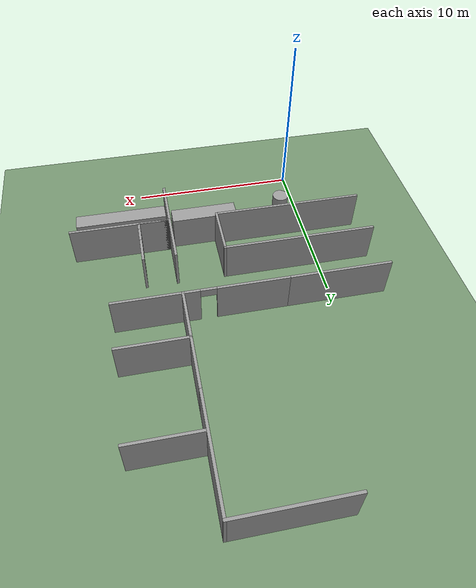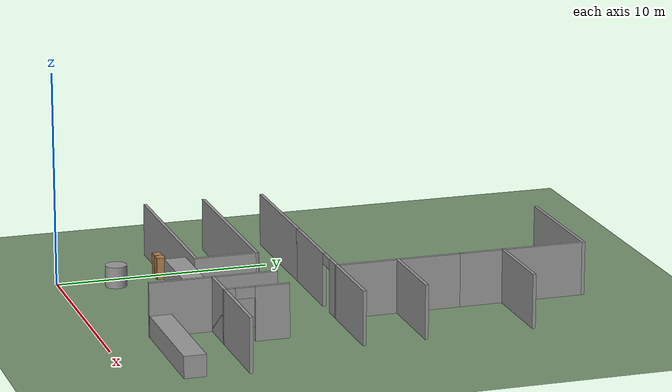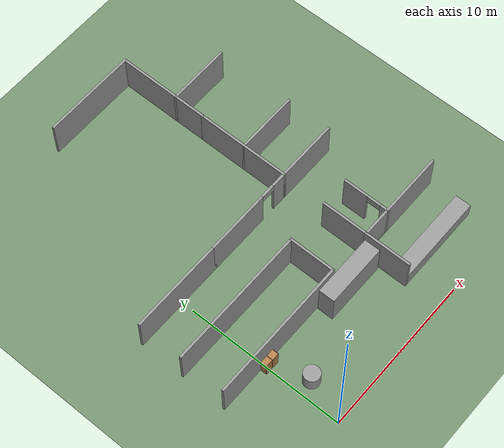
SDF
<sdf version="1.7">
 <world name="default">
  <model name="ground_plane">
   <static>1</static>
   <link name="link">
    <collision name="collision">
     <geometry><plane><normal>0 0 1</normal><size>600 600</size></plane></geometry>
     <surface>
      <contact><collide_bitmask>65535</collide_bitmask></contact>
      <friction><ode><mu>100</mu><mu2>50</mu2></ode></friction>
     </surface>
    </collision>
    <visual name="visual">
     <cast_shadows>0</cast_shadows>
     <geometry><plane><normal>0 0 1</normal><size>100 100</size></plane></geometry>
     <material><ambient>0.45 0.57 0.43 1</ambient><diffuse>0.45 0.57 0.43 1</diffuse></material>
    </visual>
   </link>
  </model>
  <model name="unit_box_clone">
   <pose>6.38296 4.44486 1.08892 0 -0.000118 0.002103</pose>
   <link name="link">
    <inertial>
     <mass>1</mass>
     <inertia>
      <ixx>0.166667</ixx>
      <ixy>0</ixy>
      <ixz>0</ixz>
      <iyy>0.166667</iyy>
      <iyz>0</iyz>
      <izz>0.166667</izz>
     </inertia>
    </inertial>
    <collision name="collision"><geometry><box><size>3.92499 1 2.1783</size></box></geometry></collision>
    <visual name="visual">
     <geometry><box><size>3.92499 1 2.1783</size></box></geometry>
     <material>
      <script><name>Gazebo/Grey</name><uri>file://media/materials/scripts/gazebo.material</uri></script>
     </material>
    </visual>
   </link>
  </model>
  <model name="myhal_V3_2">
   <link name="Wall_335">
    <pose>5.85 20.325 0 0 -0 3.14159</pose>
    <visual name="Wall_335_Visual">
     <pose>0 0 1.25 0 -0 0</pose>
     <geometry><box><size>6 0.15 2.5</size></box></geometry>
     <material>
      <script><uri>file://media/materials/scripts/gazebo.material</uri><name>Gazebo/Grey</name></script>
      <ambient>1 1 1 1</ambient>
      <shader type="pixel"/>
     </material>
     <meta><layer>0</layer></meta>
    </visual>
    <collision name="Wall_335_Collision">
     <pose>0 0 1.25 0 -0 0</pose>
     <geometry><box><size>6 0.15 2.5</size></box></geometry>
     <surface>
      <friction>
       <ode><mu>1</mu><mu2>1</mu2><fdir1>0 0 0</fdir1><slip1>0</slip1><slip2>0</slip2></ode>
       <torsional>
        <coefficient>1</coefficient>
        <patch_radius>0</patch_radius>
        <surface_radius>0</surface_radius>
        <use_patch_radius>1</use_patch_radius>
        <ode><slip>0</slip></ode>
       </torsional>
      </friction>
      <bounce><restitution_coefficient>0</restitution_coefficient><threshold>1e+06</threshold></bounce>
      <contact>
       <collide_without_contact>0</collide_without_contact>
       <collide_without_contact_bitmask>1</collide_without_contact_bitmask>
       <collide_bitmask>1</collide_bitmask>
       <ode>
        <soft_cfm>0</soft_cfm>
        <soft_erp>0.2</soft_erp>
        <kp>1e+13</kp>
        <kd>1</kd>
        <max_vel>0.01</max_vel>
        <min_depth>0</min_depth>
       </ode>
       <bullet>
        <split_impulse>1</split_impulse>
        <split_impulse_penetration_threshold>-0.01</split_impulse_penetration_threshold>
        <soft_cfm>0</soft_cfm>
        <soft_erp>0.2</soft_erp>
        <kp>1e+13</kp>
        <kd>1</kd>
       </bullet>
      </contact>
     </surface>
    </collision>
   </link>
   <link name="Wall_371">
    <pose>0 8.625 0 0 -0 0</pose>
    <visual name="Wall_371_Visual">
     <pose>0 0 1.25 0 -0 0</pose>
     <geometry><box><size>6 0.15 2.5</size></box></geometry>
     <material>
      <script><uri>file://media/materials/scripts/gazebo.material</uri><name>Gazebo/Grey</name></script>
      <ambient>1 1 1 1</ambient>
      <shader type="pixel"/>
     </material>
     <meta><layer>0</layer></meta>
    </visual>
    <collision name="Wall_371_Collision">
     <pose>0 0 1.25 0 -0 0</pose>
     <geometry><box><size>6 0.15 2.5</size></box></geometry>
     <surface>
      <friction>
       <ode><mu>1</mu><mu2>1</mu2><fdir1>0 0 0</fdir1><slip1>0</slip1><slip2>0</slip2></ode>
       <torsional>
        <coefficient>1</coefficient>
        <patch_radius>0</patch_radius>
        <surface_radius>0</surface_radius>
        <use_patch_radius>1</use_patch_radius>
        <ode><slip>0</slip></ode>
       </torsional>
      </friction>
      <bounce><restitution_coefficient>0</restitution_coefficient><threshold>1e+06</threshold></bounce>
      <contact>
       <collide_without_contact>0</collide_without_contact>
       <collide_without_contact_bitmask>1</collide_without_contact_bitmask>
       <collide_bitmask>1</collide_bitmask>
       <ode>
        <soft_cfm>0</soft_cfm>
        <soft_erp>0.2</soft_erp>
        <kp>1e+13</kp>
        <kd>1</kd>
        <max_vel>0.01</max_vel>
        <min_depth>0</min_depth>
       </ode>
       <bullet>
        <split_impulse>1</split_impulse>
        <split_impulse_penetration_threshold>-0.01</split_impulse_penetration_threshold>
        <soft_cfm>0</soft_cfm>
        <soft_erp>0.2</soft_erp>
        <kp>1e+13</kp>
        <kd>1</kd>
       </bullet>
      </contact>
     </surface>
    </collision>
   </link>
   <link name="Wall_372">
    <pose>5.85 8.625 0 0 -0 0</pose>
    <visual name="Wall_372_Visual_0">
     <pose>-0.95746 0 1.25 0 -0 0</pose>
     <geometry><box><size>4.08508 0.15 2.5</size></box></geometry>
     <material>
      <script><uri>file://media/materials/scripts/gazebo.material</uri><name>Gazebo/Grey</name></script>
      <ambient>1 1 1 1</ambient>
      <shader type="pixel"/>
     </material>
     <meta><layer>0</layer></meta>
    </visual>
    <visual name="Wall_372_Visual_1">
     <pose>2.49254 0 1.25 0 -0 0</pose>
     <geometry><box><size>1.01492 0.15 2.5</size></box></geometry>
     <material>
      <script><uri>file://media/materials/scripts/gazebo.material</uri><name>Gazebo/Grey</name></script>
      <ambient>1 1 1 1</ambient>
      <shader type="pixel"/>
     </material>
     <meta><layer>0</layer></meta>
    </visual>
    <visual name="Wall_372_Visual_2">
     <pose>1.53508 0 2.25 0 -0 0</pose>
     <geometry><box><size>0.9 0.15 0.5</size></box></geometry>
     <material>
      <script><uri>file://media/materials/scripts/gazebo.material</uri><name>Gazebo/Grey</name></script>
      <ambient>1 1 1 1</ambient>
      <shader type="pixel"/>
     </material>
     <meta><layer>0</layer></meta>
    </visual>
    <collision name="Wall_372_Collision_0">
     <pose>-0.95746 0 1.25 0 -0 0</pose>
     <geometry><box><size>4.08508 0.15 2.5</size></box></geometry>
     <surface>
      <friction>
       <ode><mu>1</mu><mu2>1</mu2><fdir1>0 0 0</fdir1><slip1>0</slip1><slip2>0</slip2></ode>
       <torsional>
        <coefficient>1</coefficient>
        <patch_radius>0</patch_radius>
        <surface_radius>0</surface_radius>
        <use_patch_radius>1</use_patch_radius>
        <ode><slip>0</slip></ode>
       </torsional>
      </friction>
      <bounce><restitution_coefficient>0</restitution_coefficient><threshold>1e+06</threshold></bounce>
      <contact>
       <collide_without_contact>0</collide_without_contact>
       <collide_without_contact_bitmask>1</collide_without_contact_bitmask>
       <collide_bitmask>1</collide_bitmask>
       <ode>
        <soft_cfm>0</soft_cfm>
        <soft_erp>0.2</soft_erp>
        <kp>1e+13</kp>
        <kd>1</kd>
        <max_vel>0.01</max_vel>
        <min_depth>0</min_depth>
       </ode>
       <bullet>
        <split_impulse>1</split_impulse>
        <split_impulse_penetration_threshold>-0.01</split_impulse_penetration_threshold>
        <soft_cfm>0</soft_cfm>
        <soft_erp>0.2</soft_erp>
        <kp>1e+13</kp>
        <kd>1</kd>
       </bullet>
      </contact>
     </surface>
    </collision>
    <collision name="Wall_372_Collision_1">
     <pose>2.49254 0 1.25 0 -0 0</pose>
     <geometry><box><size>1.01492 0.15 2.5</size></box></geometry>
     <surface>
      <friction>
       <ode><mu>1</mu><mu2>1</mu2><fdir1>0 0 0</fdir1><slip1>0</slip1><slip2>0</slip2></ode>
       <torsional>
        <coefficient>1</coefficient>
        <patch_radius>0</patch_radius>
        <surface_radius>0</surface_radius>
        <use_patch_radius>1</use_patch_radius>
        <ode><slip>0</slip></ode>
       </torsional>
      </friction>
      <bounce><restitution_coefficient>0</restitution_coefficient><threshold>1e+06</threshold></bounce>
      <contact>
       <collide_without_contact>0</collide_without_contact>
       <collide_without_contact_bitmask>1</collide_without_contact_bitmask>
       <collide_bitmask>1</collide_bitmask>
       <ode>
        <soft_cfm>0</soft_cfm>
        <soft_erp>0.2</soft_erp>
        <kp>1e+13</kp>
        <kd>1</kd>
        <max_vel>0.01</max_vel>
        <min_depth>0</min_depth>
       </ode>
       <bullet>
        <split_impulse>1</split_impulse>
        <split_impulse_penetration_threshold>-0.01</split_impulse_penetration_threshold>
        <soft_cfm>0</soft_cfm>
        <soft_erp>0.2</soft_erp>
        <kp>1e+13</kp>
        <kd>1</kd>
       </bullet>
      </contact>
     </surface>
    </collision>
    <collision name="Wall_372_Collision_2">
     <pose>1.53508 0 2.25 0 -0 0</pose>
     <geometry><box><size>0.9 0.15 0.5</size></box></geometry>
     <surface>
      <friction>
       <ode><mu>1</mu><mu2>1</mu2><fdir1>0 0 0</fdir1><slip1>0</slip1><slip2>0</slip2></ode>
       <torsional>
        <coefficient>1</coefficient>
        <patch_radius>0</patch_radius>
        <surface_radius>0</surface_radius>
        <use_patch_radius>1</use_patch_radius>
        <ode><slip>0</slip></ode>
       </torsional>
      </friction>
      <bounce><restitution_coefficient>0</restitution_coefficient><threshold>1e+06</threshold></bounce>
      <contact>
       <collide_without_contact>0</collide_without_contact>
       <collide_without_contact_bitmask>1</collide_without_contact_bitmask>
       <collide_bitmask>1</collide_bitmask>
       <ode>
        <soft_cfm>0</soft_cfm>
        <soft_erp>0.2</soft_erp>
        <kp>1e+13</kp>
        <kd>1</kd>
        <max_vel>0.01</max_vel>
        <min_depth>0</min_depth>
       </ode>
       <bullet>
        <split_impulse>1</split_impulse>
        <split_impulse_penetration_threshold>-0.01</split_impulse_penetration_threshold>
        <soft_cfm>0</soft_cfm>
        <soft_erp>0.2</soft_erp>
        <kp>1e+13</kp>
        <kd>1</kd>
       </bullet>
      </contact>
     </surface>
    </collision>
   </link>
   <link name="Wall_373">
    <pose>8.775 11.55 0 0 -0 1.5708</pose>
    <visual name="Wall_373_Visual">
     <pose>0 0 1.25 0 -0 0</pose>
     <geometry><box><size>6 0.15 2.5</size></box></geometry>
     <material>
      <script><uri>file://media/materials/scripts/gazebo.material</uri><name>Gazebo/Grey</name></script>
      <ambient>1 1 1 1</ambient>
      <shader type="pixel"/>
     </material>
     <meta><layer>0</layer></meta>
    </visual>
    <collision name="Wall_373_Collision">
     <pose>0 0 1.25 0 -0 0</pose>
     <geometry><box><size>6 0.15 2.5</size></box></geometry>
     <surface>
      <friction>
       <ode><mu>1</mu><mu2>1</mu2><fdir1>0 0 0</fdir1><slip1>0</slip1><slip2>0</slip2></ode>
       <torsional>
        <coefficient>1</coefficient>
        <patch_radius>0</patch_radius>
        <surface_radius>0</surface_radius>
        <use_patch_radius>1</use_patch_radius>
        <ode><slip>0</slip></ode>
       </torsional>
      </friction>
      <bounce><restitution_coefficient>0</restitution_coefficient><threshold>1e+06</threshold></bounce>
      <contact>
       <collide_without_contact>0</collide_without_contact>
       <collide_without_contact_bitmask>1</collide_without_contact_bitmask>
       <collide_bitmask>1</collide_bitmask>
       <ode>
        <soft_cfm>0</soft_cfm>
        <soft_erp>0.2</soft_erp>
        <kp>1e+13</kp>
        <kd>1</kd>
        <max_vel>0.01</max_vel>
        <min_depth>0</min_depth>
       </ode>
       <bullet>
        <split_impulse>1</split_impulse>
        <split_impulse_penetration_threshold>-0.01</split_impulse_penetration_threshold>
        <soft_cfm>0</soft_cfm>
        <soft_erp>0.2</soft_erp>
        <kp>1e+13</kp>
        <kd>1</kd>
       </bullet>
      </contact>
     </surface>
    </collision>
   </link>
   <link name="Wall_374">
    <pose>8.775 17.4 0 0 -0 1.5708</pose>
    <visual name="Wall_374_Visual">
     <pose>0 0 1.25 0 -0 0</pose>
     <geometry><box><size>6 0.15 2.5</size></box></geometry>
     <material>
      <script><uri>file://media/materials/scripts/gazebo.material</uri><name>Gazebo/Grey</name></script>
      <ambient>1 1 1 1</ambient>
      <shader type="pixel"/>
     </material>
     <meta><layer>0</layer></meta>
    </visual>
    <collision name="Wall_374_Collision">
     <pose>0 0 1.25 0 -0 0</pose>
     <geometry><box><size>6 0.15 2.5</size></box></geometry>
     <surface>
      <friction>
       <ode><mu>1</mu><mu2>1</mu2><fdir1>0 0 0</fdir1><slip1>0</slip1><slip2>0</slip2></ode>
       <torsional>
        <coefficient>1</coefficient>
        <patch_radius>0</patch_radius>
        <surface_radius>0</surface_radius>
        <use_patch_radius>1</use_patch_radius>
        <ode><slip>0</slip></ode>
       </torsional>
      </friction>
      <bounce><restitution_coefficient>0</restitution_coefficient><threshold>1e+06</threshold></bounce>
      <contact>
       <collide_without_contact>0</collide_without_contact>
       <collide_without_contact_bitmask>1</collide_without_contact_bitmask>
       <collide_bitmask>1</collide_bitmask>
       <ode>
        <soft_cfm>0</soft_cfm>
        <soft_erp>0.2</soft_erp>
        <kp>1e+13</kp>
        <kd>1</kd>
        <max_vel>0.01</max_vel>
        <min_depth>0</min_depth>
       </ode>
       <bullet>
        <split_impulse>1</split_impulse>
        <split_impulse_penetration_threshold>-0.01</split_impulse_penetration_threshold>
        <soft_cfm>0</soft_cfm>
        <soft_erp>0.2</soft_erp>
        <kp>1e+13</kp>
        <kd>1</kd>
       </bullet>
      </contact>
     </surface>
    </collision>
   </link>
   <link name="Wall_376">
    <pose>10.7 8.625 0 0 -0 0</pose>
    <visual name="Wall_376_Visual">
     <pose>0 0 1.25 0 -0 0</pose>
     <geometry><box><size>4 0.15 2.5</size></box></geometry>
     <material>
      <script><uri>file://media/materials/scripts/gazebo.material</uri><name>Gazebo/Grey</name></script>
      <ambient>1 1 1 1</ambient>
      <shader type="pixel"/>
     </material>
     <meta><layer>0</layer></meta>
    </visual>
    <collision name="Wall_376_Collision">
     <pose>0 0 1.25 0 -0 0</pose>
     <geometry><box><size>4 0.15 2.5</size></box></geometry>
     <surface>
      <friction>
       <ode><mu>1</mu><mu2>1</mu2><fdir1>0 0 0</fdir1><slip1>0</slip1><slip2>0</slip2></ode>
       <torsional>
        <coefficient>1</coefficient>
        <patch_radius>0</patch_radius>
        <surface_radius>0</surface_radius>
        <use_patch_radius>1</use_patch_radius>
        <ode><slip>0</slip></ode>
       </torsional>
      </friction>
      <bounce><restitution_coefficient>0</restitution_coefficient><threshold>1e+06</threshold></bounce>
      <contact>
       <collide_without_contact>0</collide_without_contact>
       <collide_without_contact_bitmask>1</collide_without_contact_bitmask>
       <collide_bitmask>1</collide_bitmask>
       <ode>
        <soft_cfm>0</soft_cfm>
        <soft_erp>0.2</soft_erp>
        <kp>1e+13</kp>
        <kd>1</kd>
        <max_vel>0.01</max_vel>
        <min_depth>0</min_depth>
       </ode>
       <bullet>
        <split_impulse>1</split_impulse>
        <split_impulse_penetration_threshold>-0.01</split_impulse_penetration_threshold>
        <soft_cfm>0</soft_cfm>
        <soft_erp>0.2</soft_erp>
        <kp>1e+13</kp>
        <kd>1</kd>
       </bullet>
      </contact>
     </surface>
    </collision>
   </link>
   <link name="Wall_380">
    <pose>10.7 16.475 0 0 -0 3.14159</pose>
    <visual name="Wall_380_Visual">
     <pose>0 0 1.25 0 -0 0</pose>
     <geometry><box><size>4 0.15 2.5</size></box></geometry>
     <material>
      <script><uri>file://media/materials/scripts/gazebo.material</uri><name>Gazebo/Grey</name></script>
      <ambient>1 1 1 1</ambient>
      <shader type="pixel"/>
     </material>
     <meta><layer>0</layer></meta>
    </visual>
    <collision name="Wall_380_Collision">
     <pose>0 0 1.25 0 -0 0</pose>
     <geometry><box><size>4 0.15 2.5</size></box></geometry>
     <surface>
      <friction>
       <ode><mu>1</mu><mu2>1</mu2><fdir1>0 0 0</fdir1><slip1>0</slip1><slip2>0</slip2></ode>
       <torsional>
        <coefficient>1</coefficient>
        <patch_radius>0</patch_radius>
        <surface_radius>0</surface_radius>
        <use_patch_radius>1</use_patch_radius>
        <ode><slip>0</slip></ode>
       </torsional>
      </friction>
      <bounce><restitution_coefficient>0</restitution_coefficient><threshold>1e+06</threshold></bounce>
      <contact>
       <collide_without_contact>0</collide_without_contact>
       <collide_without_contact_bitmask>1</collide_without_contact_bitmask>
       <collide_bitmask>1</collide_bitmask>
       <ode>
        <soft_cfm>0</soft_cfm>
        <soft_erp>0.2</soft_erp>
        <kp>1e+13</kp>
        <kd>1</kd>
        <max_vel>0.01</max_vel>
        <min_depth>0</min_depth>
       </ode>
       <bullet>
        <split_impulse>1</split_impulse>
        <split_impulse_penetration_threshold>-0.01</split_impulse_penetration_threshold>
        <soft_cfm>0</soft_cfm>
        <soft_erp>0.2</soft_erp>
        <kp>1e+13</kp>
        <kd>1</kd>
       </bullet>
      </contact>
     </surface>
    </collision>
   </link>
   <link name="Wall_467">
    <pose>8.775 4.35 0 0 0 -1.5708</pose>
    <visual name="Wall_467_Visual">
     <pose>0 0 1.25 0 -0 0</pose>
     <geometry><box><size>3 0.15 2.5</size></box></geometry>
     <material>
      <script><uri>file://media/materials/scripts/gazebo.material</uri><name>Gazebo/Grey</name></script>
      <ambient>1 1 1 1</ambient>
      <shader type="pixel"/>
     </material>
     <meta><layer>0</layer></meta>
    </visual>
    <collision name="Wall_467_Collision">
     <pose>0 0 1.25 0 -0 0</pose>
     <geometry><box><size>3 0.15 2.5</size></box></geometry>
     <surface>
      <friction>
       <ode><mu>1</mu><mu2>1</mu2><fdir1>0 0 0</fdir1><slip1>0</slip1><slip2>0</slip2></ode>
       <torsional>
        <coefficient>1</coefficient>
        <patch_radius>0</patch_radius>
        <surface_radius>0</surface_radius>
        <use_patch_radius>1</use_patch_radius>
        <ode><slip>0</slip></ode>
       </torsional>
      </friction>
      <bounce><restitution_coefficient>0</restitution_coefficient><threshold>1e+06</threshold></bounce>
      <contact>
       <collide_without_contact>0</collide_without_contact>
       <collide_without_contact_bitmask>1</collide_without_contact_bitmask>
       <collide_bitmask>1</collide_bitmask>
       <ode>
        <soft_cfm>0</soft_cfm>
        <soft_erp>0.2</soft_erp>
        <kp>1e+13</kp>
        <kd>1</kd>
        <max_vel>0.01</max_vel>
        <min_depth>0</min_depth>
       </ode>
       <bullet>
        <split_impulse>1</split_impulse>
        <split_impulse_penetration_threshold>-0.01</split_impulse_penetration_threshold>
        <soft_cfm>0</soft_cfm>
        <soft_erp>0.2</soft_erp>
        <kp>1e+13</kp>
        <kd>1</kd>
       </bullet>
      </contact>
     </surface>
    </collision>
   </link>
   <link name="Wall_468">
    <pose>11.7 2.925 0 0 -0 0</pose>
    <visual name="Wall_468_Visual">
     <pose>0 0 1.25 0 -0 0</pose>
     <geometry><box><size>6 0.15 2.5</size></box></geometry>
     <material>
      <script><uri>file://media/materials/scripts/gazebo.material</uri><name>Gazebo/Grey</name></script>
      <ambient>1 1 1 1</ambient>
      <shader type="pixel"/>
     </material>
     <meta><layer>0</layer></meta>
    </visual>
    <collision name="Wall_468_Collision">
     <pose>0 0 1.25 0 -0 0</pose>
     <geometry><box><size>6 0.15 2.5</size></box></geometry>
     <surface>
      <friction>
       <ode><mu>1</mu><mu2>1</mu2><fdir1>0 0 0</fdir1><slip1>0</slip1><slip2>0</slip2></ode>
       <torsional>
        <coefficient>1</coefficient>
        <patch_radius>0</patch_radius>
        <surface_radius>0</surface_radius>
        <use_patch_radius>1</use_patch_radius>
        <ode><slip>0</slip></ode>
       </torsional>
      </friction>
      <bounce><restitution_coefficient>0</restitution_coefficient><threshold>1e+06</threshold></bounce>
      <contact>
       <collide_without_contact>0</collide_without_contact>
       <collide_without_contact_bitmask>1</collide_without_contact_bitmask>
       <collide_bitmask>1</collide_bitmask>
       <ode>
        <soft_cfm>0</soft_cfm>
        <soft_erp>0.2</soft_erp>
        <kp>1e+13</kp>
        <kd>1</kd>
        <max_vel>0.01</max_vel>
        <min_depth>0</min_depth>
       </ode>
       <bullet>
        <split_impulse>1</split_impulse>
        <split_impulse_penetration_threshold>-0.01</split_impulse_penetration_threshold>
        <soft_cfm>0</soft_cfm>
        <soft_erp>0.2</soft_erp>
        <kp>1e+13</kp>
        <kd>1</kd>
       </bullet>
      </contact>
     </surface>
    </collision>
   </link>
   <link name="Wall_471">
    <pose>9.7 2.925 0 0 -0 0</pose>
    <visual name="Wall_471_Visual">
     <pose>0 0 1.25 0 -0 0</pose>
     <geometry><box><size>2 0.15 2.5</size></box></geometry>
     <material>
      <script><uri>file://media/materials/scripts/gazebo.material</uri><name>Gazebo/Grey</name></script>
      <ambient>1 1 1 1</ambient>
      <shader type="pixel"/>
     </material>
     <meta><layer>0</layer></meta>
    </visual>
    <collision name="Wall_471_Collision">
     <pose>0 0 1.25 0 -0 0</pose>
     <geometry><box><size>2 0.15 2.5</size></box></geometry>
     <surface>
      <friction>
       <ode><mu>1</mu><mu2>1</mu2><fdir1>0 0 0</fdir1><slip1>0</slip1><slip2>0</slip2></ode>
       <torsional>
        <coefficient>1</coefficient>
        <patch_radius>0</patch_radius>
        <surface_radius>0</surface_radius>
        <use_patch_radius>1</use_patch_radius>
        <ode><slip>0</slip></ode>
       </torsional>
      </friction>
      <bounce><restitution_coefficient>0</restitution_coefficient><threshold>1e+06</threshold></bounce>
      <contact>
       <collide_without_contact>0</collide_without_contact>
       <collide_without_contact_bitmask>1</collide_without_contact_bitmask>
       <collide_bitmask>1</collide_bitmask>
       <ode>
        <soft_cfm>0</soft_cfm>
        <soft_erp>0.2</soft_erp>
        <kp>1e+13</kp>
        <kd>1</kd>
        <max_vel>0.01</max_vel>
        <min_depth>0</min_depth>
       </ode>
       <bullet>
        <split_impulse>1</split_impulse>
        <split_impulse_penetration_threshold>-0.01</split_impulse_penetration_threshold>
        <soft_cfm>0</soft_cfm>
        <soft_erp>0.2</soft_erp>
        <kp>1e+13</kp>
        <kd>1</kd>
       </bullet>
      </contact>
     </surface>
    </collision>
   </link>
   <link name="Wall_472">
    <pose>10.625 4.35 0 0 -0 1.5708</pose>
    <visual name="Wall_472_Visual_0">
     <pose>-1.23229 0 1.25 0 -0 0</pose>
     <geometry><box><size>0.535427 0.15 2.5</size></box></geometry>
     <material>
      <script><uri>file://media/materials/scripts/gazebo.material</uri><name>Gazebo/Grey</name></script>
      <ambient>1 1 1 1</ambient>
      <shader type="pixel"/>
     </material>
     <meta><layer>0</layer></meta>
    </visual>
    <visual name="Wall_472_Visual_1">
     <pose>0.717714 0 1.25 0 -0 0</pose>
     <geometry><box><size>1.56457 0.15 2.5</size></box></geometry>
     <material>
      <script><uri>file://media/materials/scripts/gazebo.material</uri><name>Gazebo/Grey</name></script>
      <ambient>1 1 1 1</ambient>
      <shader type="pixel"/>
     </material>
     <meta><layer>0</layer></meta>
    </visual>
    <visual name="Wall_472_Visual_2">
     <pose>-0.514573 0 2.25 0 -0 0</pose>
     <geometry><box><size>0.9 0.15 0.5</size></box></geometry>
     <material>
      <script><uri>file://media/materials/scripts/gazebo.material</uri><name>Gazebo/Grey</name></script>
      <ambient>1 1 1 1</ambient>
      <shader type="pixel"/>
     </material>
     <meta><layer>0</layer></meta>
    </visual>
    <collision name="Wall_472_Collision_0">
     <pose>-1.23229 0 1.25 0 -0 0</pose>
     <geometry><box><size>0.535427 0.15 2.5</size></box></geometry>
     <surface>
      <friction>
       <ode><mu>1</mu><mu2>1</mu2><fdir1>0 0 0</fdir1><slip1>0</slip1><slip2>0</slip2></ode>
       <torsional>
        <coefficient>1</coefficient>
        <patch_radius>0</patch_radius>
        <surface_radius>0</surface_radius>
        <use_patch_radius>1</use_patch_radius>
        <ode><slip>0</slip></ode>
       </torsional>
      </friction>
      <bounce><restitution_coefficient>0</restitution_coefficient><threshold>1e+06</threshold></bounce>
      <contact>
       <collide_without_contact>0</collide_without_contact>
       <collide_without_contact_bitmask>1</collide_without_contact_bitmask>
       <collide_bitmask>1</collide_bitmask>
       <ode>
        <soft_cfm>0</soft_cfm>
        <soft_erp>0.2</soft_erp>
        <kp>1e+13</kp>
        <kd>1</kd>
        <max_vel>0.01</max_vel>
        <min_depth>0</min_depth>
       </ode>
       <bullet>
        <split_impulse>1</split_impulse>
        <split_impulse_penetration_threshold>-0.01</split_impulse_penetration_threshold>
        <soft_cfm>0</soft_cfm>
        <soft_erp>0.2</soft_erp>
        <kp>1e+13</kp>
        <kd>1</kd>
       </bullet>
      </contact>
     </surface>
    </collision>
    <collision name="Wall_472_Collision_1">
     <pose>0.717714 0 1.25 0 -0 0</pose>
     <geometry><box><size>1.56457 0.15 2.5</size></box></geometry>
     <surface>
      <friction>
       <ode><mu>1</mu><mu2>1</mu2><fdir1>0 0 0</fdir1><slip1>0</slip1><slip2>0</slip2></ode>
       <torsional>
        <coefficient>1</coefficient>
        <patch_radius>0</patch_radius>
        <surface_radius>0</surface_radius>
        <use_patch_radius>1</use_patch_radius>
        <ode><slip>0</slip></ode>
       </torsional>
      </friction>
      <bounce><restitution_coefficient>0</restitution_coefficient><threshold>1e+06</threshold></bounce>
      <contact>
       <collide_without_contact>0</collide_without_contact>
       <collide_without_contact_bitmask>1</collide_without_contact_bitmask>
       <collide_bitmask>1</collide_bitmask>
       <ode>
        <soft_cfm>0</soft_cfm>
        <soft_erp>0.2</soft_erp>
        <kp>1e+13</kp>
        <kd>1</kd>
        <max_vel>0.01</max_vel>
        <min_depth>0</min_depth>
       </ode>
       <bullet>
        <split_impulse>1</split_impulse>
        <split_impulse_penetration_threshold>-0.01</split_impulse_penetration_threshold>
        <soft_cfm>0</soft_cfm>
        <soft_erp>0.2</soft_erp>
        <kp>1e+13</kp>
        <kd>1</kd>
       </bullet>
      </contact>
     </surface>
    </collision>
    <collision name="Wall_472_Collision_2">
     <pose>-0.514573 0 2.25 0 -0 0</pose>
     <geometry><box><size>0.9 0.15 0.5</size></box></geometry>
     <surface>
      <friction>
       <ode><mu>1</mu><mu2>1</mu2><fdir1>0 0 0</fdir1><slip1>0</slip1><slip2>0</slip2></ode>
       <torsional>
        <coefficient>1</coefficient>
        <patch_radius>0</patch_radius>
        <surface_radius>0</surface_radius>
        <use_patch_radius>1</use_patch_radius>
        <ode><slip>0</slip></ode>
       </torsional>
      </friction>
      <bounce><restitution_coefficient>0</restitution_coefficient><threshold>1e+06</threshold></bounce>
      <contact>
       <collide_without_contact>0</collide_without_contact>
       <collide_without_contact_bitmask>1</collide_without_contact_bitmask>
       <collide_bitmask>1</collide_bitmask>
       <ode>
        <soft_cfm>0</soft_cfm>
        <soft_erp>0.2</soft_erp>
        <kp>1e+13</kp>
        <kd>1</kd>
        <max_vel>0.01</max_vel>
        <min_depth>0</min_depth>
       </ode>
       <bullet>
        <split_impulse>1</split_impulse>
        <split_impulse_penetration_threshold>-0.01</split_impulse_penetration_threshold>
        <soft_cfm>0</soft_cfm>
        <soft_erp>0.2</soft_erp>
        <kp>1e+13</kp>
        <kd>1</kd>
       </bullet>
      </contact>
     </surface>
    </collision>
   </link>
   <link name="Wall_478">
    <pose>8.775 1.5 0 0 -0 1.5708</pose>
    <visual name="Wall_478_Visual">
     <pose>0 0 1.25 0 -0 0</pose>
     <geometry><box><size>3 0.15 2.5</size></box></geometry>
     <material>
      <script><uri>file://media/materials/scripts/gazebo.material</uri><name>Gazebo/Grey</name></script>
      <ambient>1 1 1 1</ambient>
      <shader type="pixel"/>
     </material>
     <meta><layer>0</layer></meta>
    </visual>
    <collision name="Wall_478_Collision">
     <pose>0 0 1.25 0 -0 0</pose>
     <geometry><box><size>3 0.15 2.5</size></box></geometry>
     <surface>
      <friction>
       <ode><mu>1</mu><mu2>1</mu2><fdir1>0 0 0</fdir1><slip1>0</slip1><slip2>0</slip2></ode>
       <torsional>
        <coefficient>1</coefficient>
        <patch_radius>0</patch_radius>
        <surface_radius>0</surface_radius>
        <use_patch_radius>1</use_patch_radius>
        <ode><slip>0</slip></ode>
       </torsional>
      </friction>
      <bounce><restitution_coefficient>0</restitution_coefficient><threshold>1e+06</threshold></bounce>
      <contact>
       <collide_without_contact>0</collide_without_contact>
       <collide_without_contact_bitmask>1</collide_without_contact_bitmask>
       <collide_bitmask>1</collide_bitmask>
       <ode>
        <soft_cfm>0</soft_cfm>
        <soft_erp>0.2</soft_erp>
        <kp>1e+13</kp>
        <kd>1</kd>
        <max_vel>0.01</max_vel>
        <min_depth>0</min_depth>
       </ode>
       <bullet>
        <split_impulse>1</split_impulse>
        <split_impulse_penetration_threshold>-0.01</split_impulse_penetration_threshold>
        <soft_cfm>0</soft_cfm>
        <soft_erp>0.2</soft_erp>
        <kp>1e+13</kp>
        <kd>1</kd>
       </bullet>
      </contact>
     </surface>
    </collision>
   </link>
   <link name="Wall_502">
    <pose>1.5 2.925 0 0 -0 0</pose>
    <visual name="Wall_502_Visual">
     <pose>0 0 1.25 0 -0 0</pose>
     <geometry><box><size>9 0.15 2.5</size></box></geometry>
     <material>
      <script><uri>file://media/materials/scripts/gazebo.material</uri><name>Gazebo/Grey</name></script>
      <ambient>1 1 1 1</ambient>
      <shader type="pixel"/>
     </material>
     <meta><layer>0</layer></meta>
    </visual>
    <collision name="Wall_502_Collision">
     <pose>0 0 1.25 0 -0 0</pose>
     <geometry><box><size>9 0.15 2.5</size></box></geometry>
     <surface>
      <friction>
       <ode><mu>1</mu><mu2>1</mu2><fdir1>0 0 0</fdir1><slip1>0</slip1><slip2>0</slip2></ode>
       <torsional>
        <coefficient>1</coefficient>
        <patch_radius>0</patch_radius>
        <surface_radius>0</surface_radius>
        <use_patch_radius>1</use_patch_radius>
        <ode><slip>0</slip></ode>
       </torsional>
      </friction>
      <bounce><restitution_coefficient>0</restitution_coefficient><threshold>1e+06</threshold></bounce>
      <contact>
       <collide_without_contact>0</collide_without_contact>
       <collide_without_contact_bitmask>1</collide_without_contact_bitmask>
       <collide_bitmask>1</collide_bitmask>
       <ode>
        <soft_cfm>0</soft_cfm>
        <soft_erp>0.2</soft_erp>
        <kp>1e+13</kp>
        <kd>1</kd>
        <max_vel>0.01</max_vel>
        <min_depth>0</min_depth>
       </ode>
       <bullet>
        <split_impulse>1</split_impulse>
        <split_impulse_penetration_threshold>-0.01</split_impulse_penetration_threshold>
        <soft_cfm>0</soft_cfm>
        <soft_erp>0.2</soft_erp>
        <kp>1e+13</kp>
        <kd>1</kd>
       </bullet>
      </contact>
     </surface>
    </collision>
   </link>
   <link name="Wall_503">
    <pose>5.925 4.35 0 0 -0 1.5708</pose>
    <visual name="Wall_503_Visual">
     <pose>0 0 1.25 0 -0 0</pose>
     <geometry><box><size>3 0.15 2.5</size></box></geometry>
     <material>
      <script><uri>file://media/materials/scripts/gazebo.material</uri><name>Gazebo/Grey</name></script>
      <ambient>1 1 1 1</ambient>
      <shader type="pixel"/>
     </material>
     <meta><layer>0</layer></meta>
    </visual>
    <collision name="Wall_503_Collision">
     <pose>0 0 1.25 0 -0 0</pose>
     <geometry><box><size>3 0.15 2.5</size></box></geometry>
     <surface>
      <friction>
       <ode><mu>1</mu><mu2>1</mu2><fdir1>0 0 0</fdir1><slip1>0</slip1><slip2>0</slip2></ode>
       <torsional>
        <coefficient>1</coefficient>
        <patch_radius>0</patch_radius>
        <surface_radius>0</surface_radius>
        <use_patch_radius>1</use_patch_radius>
        <ode><slip>0</slip></ode>
       </torsional>
      </friction>
      <bounce><restitution_coefficient>0</restitution_coefficient><threshold>1e+06</threshold></bounce>
      <contact>
       <collide_without_contact>0</collide_without_contact>
       <collide_without_contact_bitmask>1</collide_without_contact_bitmask>
       <collide_bitmask>1</collide_bitmask>
       <ode>
        <soft_cfm>0</soft_cfm>
        <soft_erp>0.2</soft_erp>
        <kp>1e+13</kp>
        <kd>1</kd>
        <max_vel>0.01</max_vel>
        <min_depth>0</min_depth>
       </ode>
       <bullet>
        <split_impulse>1</split_impulse>
        <split_impulse_penetration_threshold>-0.01</split_impulse_penetration_threshold>
        <soft_cfm>0</soft_cfm>
        <soft_erp>0.2</soft_erp>
        <kp>1e+13</kp>
        <kd>1</kd>
       </bullet>
      </contact>
     </surface>
    </collision>
   </link>
   <link name="Wall_504">
    <pose>1.5 5.775 0 0 -0 3.14159</pose>
    <visual name="Wall_504_Visual">
     <pose>0 0 1.25 0 -0 0</pose>
     <geometry><box><size>9 0.15 2.5</size></box></geometry>
     <material>
      <script><uri>file://media/materials/scripts/gazebo.material</uri><name>Gazebo/Grey</name></script>
      <ambient>1 1 1 1</ambient>
      <shader type="pixel"/>
     </material>
     <meta><layer>0</layer></meta>
    </visual>
    <collision name="Wall_504_Collision">
     <pose>0 0 1.25 0 -0 0</pose>
     <geometry><box><size>9 0.15 2.5</size></box></geometry>
     <surface>
      <friction>
       <ode><mu>1</mu><mu2>1</mu2><fdir1>0 0 0</fdir1><slip1>0</slip1><slip2>0</slip2></ode>
       <torsional>
        <coefficient>1</coefficient>
        <patch_radius>0</patch_radius>
        <surface_radius>0</surface_radius>
        <use_patch_radius>1</use_patch_radius>
        <ode><slip>0</slip></ode>
       </torsional>
      </friction>
      <bounce><restitution_coefficient>0</restitution_coefficient><threshold>1e+06</threshold></bounce>
      <contact>
       <collide_without_contact>0</collide_without_contact>
       <collide_without_contact_bitmask>1</collide_without_contact_bitmask>
       <collide_bitmask>1</collide_bitmask>
       <ode>
        <soft_cfm>0</soft_cfm>
        <soft_erp>0.2</soft_erp>
        <kp>1e+13</kp>
        <kd>1</kd>
        <max_vel>0.01</max_vel>
        <min_depth>0</min_depth>
       </ode>
       <bullet>
        <split_impulse>1</split_impulse>
        <split_impulse_penetration_threshold>-0.01</split_impulse_penetration_threshold>
        <soft_cfm>0</soft_cfm>
        <soft_erp>0.2</soft_erp>
        <kp>1e+13</kp>
        <kd>1</kd>
       </bullet>
      </contact>
     </surface>
    </collision>
   </link>
   <link name="Wall_587">
    <pose>10.7 11.475 0 0 -0 3.14159</pose>
    <visual name="Wall_587_Visual">
     <pose>0 0 1.25 0 -0 0</pose>
     <geometry><box><size>4 0.15 2.5</size></box></geometry>
     <material>
      <script><uri>file://media/materials/scripts/gazebo.material</uri><name>Gazebo/Grey</name></script>
      <ambient>1 1 1 1</ambient>
      <shader type="pixel"/>
     </material>
     <meta><layer>0</layer></meta>
    </visual>
    <collision name="Wall_587_Collision">
     <pose>0 0 1.25 0 -0 0</pose>
     <geometry><box><size>4 0.15 2.5</size></box></geometry>
     <surface>
      <friction>
       <ode><mu>1</mu><mu2>1</mu2><fdir1>0 0 0</fdir1><slip1>0</slip1><slip2>0</slip2></ode>
       <torsional>
        <coefficient>1</coefficient>
        <patch_radius>0</patch_radius>
        <surface_radius>0</surface_radius>
        <use_patch_radius>1</use_patch_radius>
        <ode><slip>0</slip></ode>
       </torsional>
      </friction>
      <bounce><restitution_coefficient>0</restitution_coefficient><threshold>1e+06</threshold></bounce>
      <contact>
       <collide_without_contact>0</collide_without_contact>
       <collide_without_contact_bitmask>1</collide_without_contact_bitmask>
       <collide_bitmask>1</collide_bitmask>
       <ode>
        <soft_cfm>0</soft_cfm>
        <soft_erp>0.2</soft_erp>
        <kp>1e+13</kp>
        <kd>1</kd>
        <max_vel>0.01</max_vel>
        <min_depth>0</min_depth>
       </ode>
       <bullet>
        <split_impulse>1</split_impulse>
        <split_impulse_penetration_threshold>-0.01</split_impulse_penetration_threshold>
        <soft_cfm>0</soft_cfm>
        <soft_erp>0.2</soft_erp>
        <kp>1e+13</kp>
        <kd>1</kd>
       </bullet>
      </contact>
     </surface>
    </collision>
   </link>
   <model name="cabinet_clone">
    <static>1</static>
    <link name="cabinet_bottom_plate">
     <inertial>
      <pose>0 0 -1 0 -0 0</pose>
      <inertia><ixx>2.05</ixx><ixy>0</ixy><ixz>0</ixz><iyy>2.05</iyy><iyz>0</iyz><izz>2.05</izz></inertia>
      <mass>25</mass>
     </inertial>
     <collision name="cabinet_bottom_plate_geom">
      <pose>0 0 0.01 0 -0 0</pose>
      <geometry><box><size>0.45 0.45 0.02</size></box></geometry>
     </collision>
     <visual name="cabinet_bottom_plate_geom_visual">
      <pose>0 0 0.01 0 -0 0</pose>
      <geometry><box><size>0.45 0.45 0.02</size></box></geometry>
      <material>
       <script><uri>file://media/materials/scripts/gazebo.material</uri><name>Gazebo/Wood</name></script>
      </material>
     </visual>
     <collision name="cabinet_bottom_plate_geom_cabinet_back_plate">
      <pose>0.235 0 0.51 0 -0 0</pose>
      <geometry><box><size>0.02 0.45 1.02</size></box></geometry>
     </collision>
     <visual name="cabinet_bottom_plate_geom_cabinet_back_plate_visual">
      <pose>0.235 0 0.51 0 -0 0</pose>
      <geometry><box><size>0.02 0.45 1.02</size></box></geometry>
      <material>
       <script><uri>file://media/materials/scripts/gazebo.material</uri><name>Gazebo/Wood</name></script>
      </material>
     </visual>
     <collision name="cabinet_bottom_plate_geom_cabinet_left_plate">
      <pose>0 0.235 0.51 0 -0 0</pose>
      <geometry><box><size>0.45 0.02 1.02</size></box></geometry>
     </collision>
     <visual name="cabinet_bottom_plate_geom_cabinet_left_plate_visual">
      <pose>0 0.235 0.51 0 -0 0</pose>
      <geometry><box><size>0.45 0.02 1.02</size></box></geometry>
      <material>
       <script><uri>file://media/materials/scripts/gazebo.material</uri><name>Gazebo/Wood</name></script>
      </material>
     </visual>
     <collision name="cabinet_bottom_plate_geom_cabinet_middle_plate">
      <pose>0 0 0.51 0 -0 0</pose>
      <geometry><box><size>0.45 0.45 0.02</size></box></geometry>
     </collision>
     <visual name="cabinet_bottom_plate_geom_cabinet_middle_plate_visual">
      <pose>0 0 0.51 0 -0 0</pose>
      <geometry><box><size>0.45 0.45 0.02</size></box></geometry>
      <material>
       <script><uri>file://media/materials/scripts/gazebo.material</uri><name>Gazebo/Wood</name></script>
      </material>
     </visual>
     <collision name="cabinet_bottom_plate_geom_cabinet_right_plate">
      <pose>0 -0.235 0.51 0 -0 0</pose>
      <geometry><box><size>0.45 0.02 1.02</size></box></geometry>
     </collision>
     <visual name="cabinet_bottom_plate_geom_cabinet_right_plate_visual">
      <pose>0 -0.235 0.51 0 -0 0</pose>
      <geometry><box><size>0.45 0.02 1.02</size></box></geometry>
      <material>
       <script><uri>file://media/materials/scripts/gazebo.material</uri><name>Gazebo/Wood</name></script>
      </material>
     </visual>
     <collision name="cabinet_bottom_plate_geom_cabinet_top_plate">
      <pose>0 0 1.01 0 -0 0</pose>
      <geometry><box><size>0.45 0.45 0.02</size></box></geometry>
     </collision>
     <visual name="cabinet_bottom_plate_geom_cabinet_top_plate_visual">
      <pose>0 0 1.01 0 -0 0</pose>
      <geometry><box><size>0.45 0.45 0.02</size></box></geometry>
      <material>
       <script><uri>file://media/materials/scripts/gazebo.material</uri><name>Gazebo/Wood</name></script>
      </material>
     </visual>
    </link>
    <pose>0.649853 2.69053 0 0 0 -1.58197</pose>
   </model>
   <model name="cabinet_clone_0">
    <static>1</static>
    <link name="cabinet_bottom_plate">
     <inertial>
      <pose>0 0 -1 0 -0 0</pose>
      <inertia><ixx>2.05</ixx><ixy>0</ixy><ixz>0</ixz><iyy>2.05</iyy><iyz>0</iyz><izz>2.05</izz></inertia>
      <mass>25</mass>
     </inertial>
     <collision name="cabinet_bottom_plate_geom">
      <pose>0 0 0.01 0 -0 0</pose>
      <geometry><box><size>0.45 0.45 0.02</size></box></geometry>
     </collision>
     <visual name="cabinet_bottom_plate_geom_visual">
      <pose>0 0 0.01 0 -0 0</pose>
      <geometry><box><size>0.45 0.45 0.02</size></box></geometry>
      <material>
       <script><uri>file://media/materials/scripts/gazebo.material</uri><name>Gazebo/Wood</name></script>
      </material>
     </visual>
     <collision name="cabinet_bottom_plate_geom_cabinet_back_plate">
      <pose>0.235 0 0.51 0 -0 0</pose>
      <geometry><box><size>0.02 0.45 1.02</size></box></geometry>
     </collision>
     <visual name="cabinet_bottom_plate_geom_cabinet_back_plate_visual">
      <pose>0.235 0 0.51 0 -0 0</pose>
      <geometry><box><size>0.02 0.45 1.02</size></box></geometry>
      <material>
       <script><uri>file://media/materials/scripts/gazebo.material</uri><name>Gazebo/Wood</name></script>
      </material>
     </visual>
     <collision name="cabinet_bottom_plate_geom_cabinet_left_plate">
      <pose>0 0.235 0.51 0 -0 0</pose>
      <geometry><box><size>0.45 0.02 1.02</size></box></geometry>
     </collision>
     <visual name="cabinet_bottom_plate_geom_cabinet_left_plate_visual">
      <pose>0 0.235 0.51 0 -0 0</pose>
      <geometry><box><size>0.45 0.02 1.02</size></box></geometry>
      <material>
       <script><uri>file://media/materials/scripts/gazebo.material</uri><name>Gazebo/Wood</name></script>
      </material>
     </visual>
     <collision name="cabinet_bottom_plate_geom_cabinet_middle_plate">
      <pose>0 0 0.51 0 -0 0</pose>
      <geometry><box><size>0.45 0.45 0.02</size></box></geometry>
     </collision>
     <visual name="cabinet_bottom_plate_geom_cabinet_middle_plate_visual">
      <pose>0 0 0.51 0 -0 0</pose>
      <geometry><box><size>0.45 0.45 0.02</size></box></geometry>
      <material>
       <script><uri>file://media/materials/scripts/gazebo.material</uri><name>Gazebo/Wood</name></script>
      </material>
     </visual>
     <collision name="cabinet_bottom_plate_geom_cabinet_right_plate">
      <pose>0 -0.235 0.51 0 -0 0</pose>
      <geometry><box><size>0.45 0.02 1.02</size></box></geometry>
     </collision>
     <visual name="cabinet_bottom_plate_geom_cabinet_right_plate_visual">
      <pose>0 -0.235 0.51 0 -0 0</pose>
      <geometry><box><size>0.45 0.02 1.02</size></box></geometry>
      <material>
       <script><uri>file://media/materials/scripts/gazebo.material</uri><name>Gazebo/Wood</name></script>
      </material>
     </visual>
     <collision name="cabinet_bottom_plate_geom_cabinet_top_plate">
      <pose>0 0 1.01 0 -0 0</pose>
      <geometry><box><size>0.45 0.45 0.02</size></box></geometry>
     </collision>
     <visual name="cabinet_bottom_plate_geom_cabinet_top_plate_visual">
      <pose>0 0 1.01 0 -0 0</pose>
      <geometry><box><size>0.45 0.45 0.02</size></box></geometry>
      <material>
       <script><uri>file://media/materials/scripts/gazebo.material</uri><name>Gazebo/Wood</name></script>
      </material>
     </visual>
    </link>
    <pose>0.167237 2.70021 0 0 0 -1.58197</pose>
   </model>
   <static>1</static>
   <pose>-0.2201 2.1339 0 0 -0 0</pose>
  </model>
  <model name="unit_cylinder_12">
   <pose>0.953278 2.5717 0.499997 4e-06 2e-06 -0</pose>
   <link name="link">
    <inertial>
     <mass>1</mass>
     <inertia><ixx>0.145833</ixx><ixy>0</ixy><ixz>0</ixz><iyy>0.145833</iyy><iyz>0</iyz><izz>0.125</izz></inertia>
    </inertial>
    <collision name="collision">
     <geometry><cylinder><radius>0.5</radius><length>1</length></cylinder></geometry>
    </collision>
    <visual name="visual">
     <geometry><cylinder><radius>0.5</radius><length>1</length></cylinder></geometry>
     <material>
      <script><name>Gazebo/Grey</name><uri>file://media/materials/scripts/gazebo.material</uri></script>
     </material>
    </visual>
   </link>
  </model>
  <model name="unit_box_0">
   <pose>11.4602 2.6471 0.496327 0 -0.001302 -6.4e-05</pose>
   <link name="link">
    <inertial>
     <mass>1</mass>
     <inertia>
      <ixx>0.166667</ixx>
      <ixy>0</ixy>
      <ixz>0</ixz>
      <iyy>0.166667</iyy>
      <iyz>0</iyz>
      <izz>0.166667</izz>
     </inertia>
    </inertial>
    <collision name="collision"><geometry><box><size>5.6448 1 1</size></box></geometry></collision>
    <visual name="visual">
     <geometry><box><size>5.6448 1 1</size></box></geometry>
     <material>
      <script><name>Gazebo/Grey</name><uri>file://media/materials/scripts/gazebo.material</uri></script>
     </material>
    </visual>
   </link>
  </model>
 </world>
</sdf>
